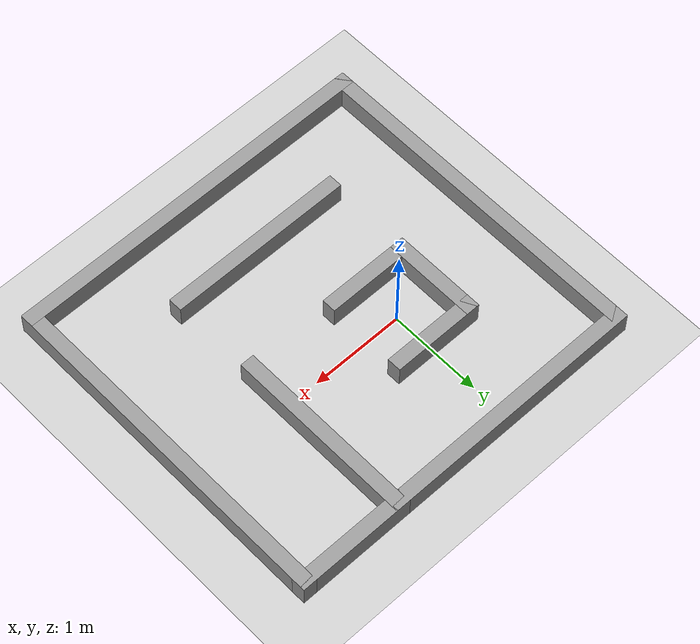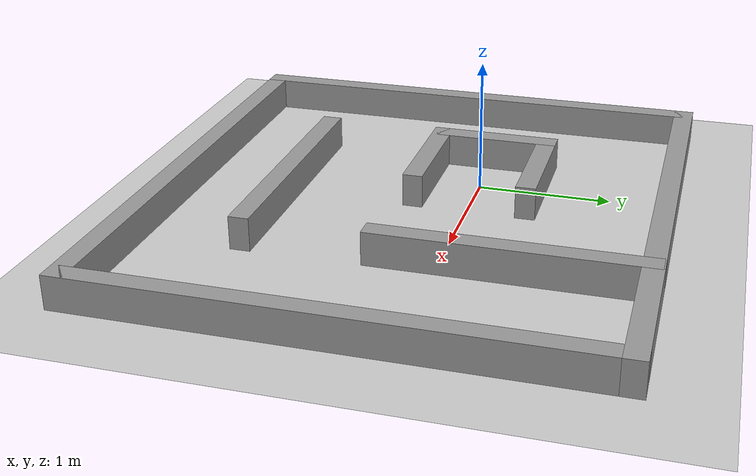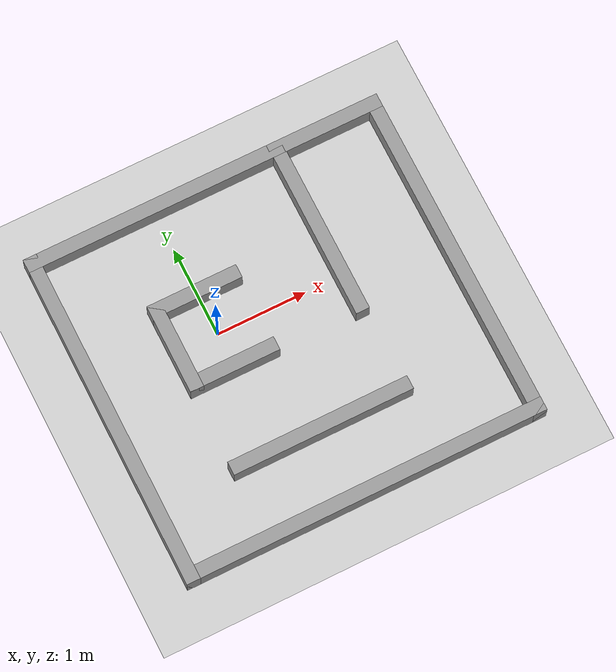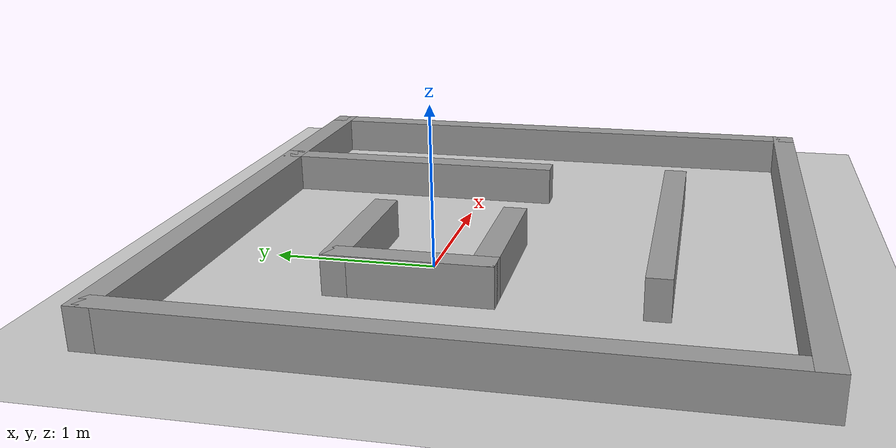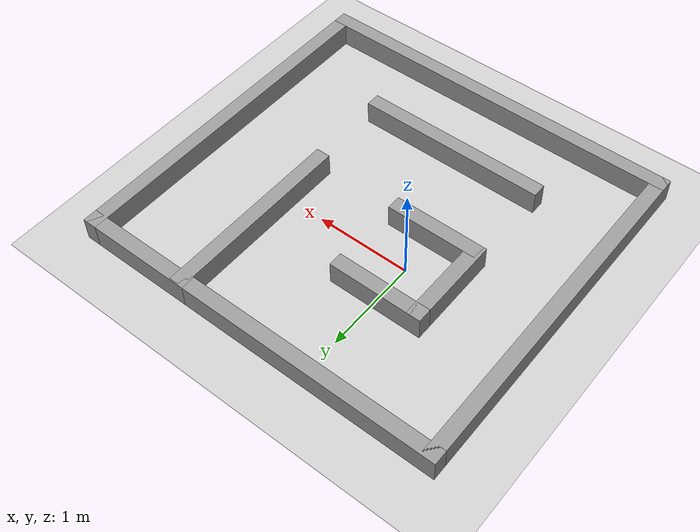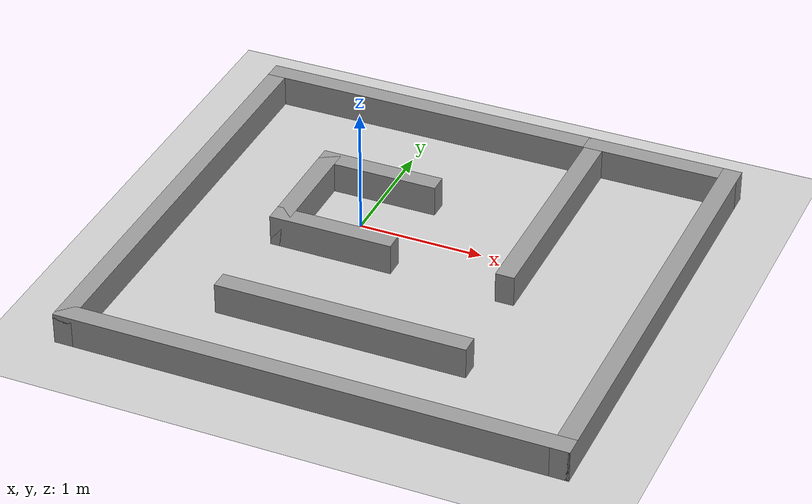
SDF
<sdf version="1.6">
 <world name="default">
  <light name="sun" type="directional">
   <pose>0 0 10 0 -0 0</pose>
   <diffuse>0.8 0.8 0.8 1</diffuse>
   <specular>0.1 0.1 0.1 1</specular>
   <attenuation>
    <range>1000</range>
    <constant>0.9</constant>
    <linear>0.01</linear>
    <quadratic>0.001</quadratic>
   </attenuation>
   <direction>-0.5 0.5 -1</direction>
  </light>
  <model name="ground_plane">
   <static>1</static>
   <link name="link">
    <collision name="collision">
     <geometry><plane><normal>0 0 1</normal><size>100 100</size></plane></geometry>
     <surface><friction><ode><mu>100</mu><mu2>50</mu2></ode></friction></surface>
    </collision>
    <visual name="visual">
     <cast_shadows>0</cast_shadows>
     <geometry><plane><normal>0 0 1</normal><size>100 100</size></plane></geometry>
     <material>
      <script><uri>file://media/materials/scripts/gazebo.material</uri><name>Gazebo/Grey</name></script>
     </material>
    </visual>
   </link>
  </model>
  <gravity>0 0 -9.8</gravity>
  <magnetic_field>6e-06 2.3e-05 -4.2e-05</magnetic_field>
  <atmosphere type="adiabatic"/>
  <physics name="default_physics" default="0" type="ode">
   <max_step_size>0.001</max_step_size>
   <real_time_factor>1</real_time_factor>
   <real_time_update_rate>1000</real_time_update_rate>
  </physics>
  <scene><ambient>0.4 0.4 0.4 1</ambient><background>0.7 0.7 0.7 1</background><shadows>1</shadows></scene>
  <spherical_coordinates>
   <surface_model>EARTH_WGS84</surface_model>
   <latitude_deg>0</latitude_deg>
   <longitude_deg>0</longitude_deg>
   <elevation>0</elevation>
   <heading_deg>0</heading_deg>
  </spherical_coordinates>
  <model name="Maze_Walls_3">
   <pose>0.562153 -0.363932 0 0 -0 0</pose>
   <link name="Wall_0">
    <collision name="Wall_0_Collision">
     <geometry><box><size>1 0.15 0.25</size></box></geometry>
     <pose>0 0 0.125 0 -0 0</pose>
    </collision>
    <visual name="Wall_0_Visual">
     <pose>0 0 0.125 0 -0 0</pose>
     <geometry><box><size>1 0.15 0.25</size></box></geometry>
     <material>
      <script><uri>file://media/materials/scripts/gazebo.material</uri><name>Gazebo/Grey</name></script>
      <ambient>1 1 1 1</ambient>
     </material>
    </visual>
    <pose>-0.6 0.8 0 0 -0 3.14159</pose>
   </link>
   <link name="Wall_1">
    <collision name="Wall_1_Collision">
     <geometry><box><size>1 0.15 0.25</size></box></geometry>
     <pose>0 0 0.125 0 -0 0</pose>
    </collision>
    <visual name="Wall_1_Visual">
     <pose>0 0 0.125 0 -0 0</pose>
     <geometry><box><size>1 0.15 0.25</size></box></geometry>
     <material>
      <script><uri>file://media/materials/scripts/gazebo.material</uri><name>Gazebo/Grey</name></script>
      <ambient>1 1 1 1</ambient>
     </material>
    </visual>
    <pose>-1.025 0.375 0 0 0 -1.5708</pose>
   </link>
   <link name="Wall_13">
    <collision name="Wall_13_Collision">
     <geometry><box><size>2 0.15 0.25</size></box></geometry>
     <pose>0 0 0.125 0 -0 0</pose>
    </collision>
    <visual name="Wall_13_Visual">
     <pose>0 0 0.125 0 -0 0</pose>
     <geometry><box><size>2 0.15 0.25</size></box></geometry>
     <material>
      <script><uri>file://media/materials/scripts/gazebo.material</uri><name>Gazebo/Grey</name></script>
      <ambient>1 1 1 1</ambient>
     </material>
    </visual>
    <pose>-0.09 -1.01 0 0 -0 0</pose>
   </link>
   <link name="Wall_17">
    <collision name="Wall_17_Collision">
     <geometry><box><size>4 0.15 0.25</size></box></geometry>
     <pose>0 0 0.125 0 -0 0</pose>
    </collision>
    <visual name="Wall_17_Visual">
     <pose>0 0 0.125 0 -0 0</pose>
     <geometry><box><size>4 0.15 0.25</size></box></geometry>
     <material>
      <script><uri>file://media/materials/scripts/gazebo.material</uri><name>Gazebo/Grey</name></script>
      <ambient>1 1 1 1</ambient>
     </material>
    </visual>
    <pose>0 -1.8 0 0 -0 0</pose>
   </link>
   <link name="Wall_2">
    <collision name="Wall_2_Collision">
     <geometry><box><size>1 0.15 0.25</size></box></geometry>
     <pose>0 0 0.125 0 -0 0</pose>
    </collision>
    <visual name="Wall_2_Visual">
     <pose>0 0 0.125 0 -0 0</pose>
     <geometry><box><size>1 0.15 0.25</size></box></geometry>
     <material>
      <script><uri>file://media/materials/scripts/gazebo.material</uri><name>Gazebo/Grey</name></script>
      <ambient>1 1 1 1</ambient>
     </material>
    </visual>
    <pose>-0.6 -0.05 0 0 -0 0</pose>
   </link>
   <link name="Wall_4">
    <collision name="Wall_4_Collision">
     <geometry><box><size>2 0.15 0.25</size></box></geometry>
     <pose>0 0 0.125 0 -0 0</pose>
    </collision>
    <visual name="Wall_4_Visual">
     <pose>0 0 0.125 0 -0 0</pose>
     <geometry><box><size>2 0.15 0.25</size></box></geometry>
     <material>
      <script><uri>file://media/materials/scripts/gazebo.material</uri><name>Gazebo/Grey</name></script>
      <ambient>1 1 1 1</ambient>
     </material>
    </visual>
    <pose>0.825 0.865 0 0 -0 1.5708</pose>
   </link>
   <link name="Wall_5">
    <collision name="Wall_5_Collision">
     <geometry><box><size>2.89 0.15 0.25</size></box></geometry>
     <pose>0 0 0.125 0 -0 0</pose>
    </collision>
    <visual name="Wall_5_Visual">
     <pose>0 0 0.125 0 -0 0</pose>
     <geometry><box><size>2.89 0.15 0.25</size></box></geometry>
     <material>
      <script><uri>file://media/materials/scripts/gazebo.material</uri><name>Gazebo/Grey</name></script>
      <ambient>1 1 1 1</ambient>
     </material>
    </visual>
    <pose>-0.555 1.8 0 0 -0 3.14159</pose>
   </link>
   <link name="Wall_6">
    <collision name="Wall_6_Collision">
     <geometry><box><size>3.75 0.15 0.25</size></box></geometry>
     <pose>0 0 0.125 0 -0 0</pose>
    </collision>
    <visual name="Wall_6_Visual">
     <pose>0 0 0.125 0 -0 0</pose>
     <geometry><box><size>3.75 0.15 0.25</size></box></geometry>
     <material>
      <script><uri>file://media/materials/scripts/gazebo.material</uri><name>Gazebo/Grey</name></script>
      <ambient>1 1 1 1</ambient>
     </material>
    </visual>
    <pose>-1.925 0 0 0 0 -1.5708</pose>
   </link>
   <link name="Wall_8">
    <collision name="Wall_8_Collision">
     <geometry><box><size>3.75 0.15 0.25</size></box></geometry>
     <pose>0 0 0.125 0 -0 0</pose>
    </collision>
    <visual name="Wall_8_Visual">
     <pose>0 0 0.125 0 -0 0</pose>
     <geometry><box><size>3.75 0.15 0.25</size></box></geometry>
     <material>
      <script><uri>file://media/materials/scripts/gazebo.material</uri><name>Gazebo/Grey</name></script>
      <ambient>1 1 1 1</ambient>
     </material>
    </visual>
    <pose>1.925 0 0 0 -0 1.5708</pose>
   </link>
   <link name="Wall_9">
    <collision name="Wall_9_Collision">
     <geometry><box><size>1.26 0.15 0.25</size></box></geometry>
     <pose>0 0 0.125 0 -0 0</pose>
    </collision>
    <visual name="Wall_9_Visual">
     <pose>0 0 0.125 0 -0 0</pose>
     <geometry><box><size>1.26 0.15 0.25</size></box></geometry>
     <material>
      <script><uri>file://media/materials/scripts/gazebo.material</uri><name>Gazebo/Grey</name></script>
      <ambient>1 1 1 1</ambient>
     </material>
    </visual>
    <pose>1.37 1.8 0 0 -0 3.14159</pose>
   </link>
   <static>1</static>
  </model>
 </world>
</sdf>
